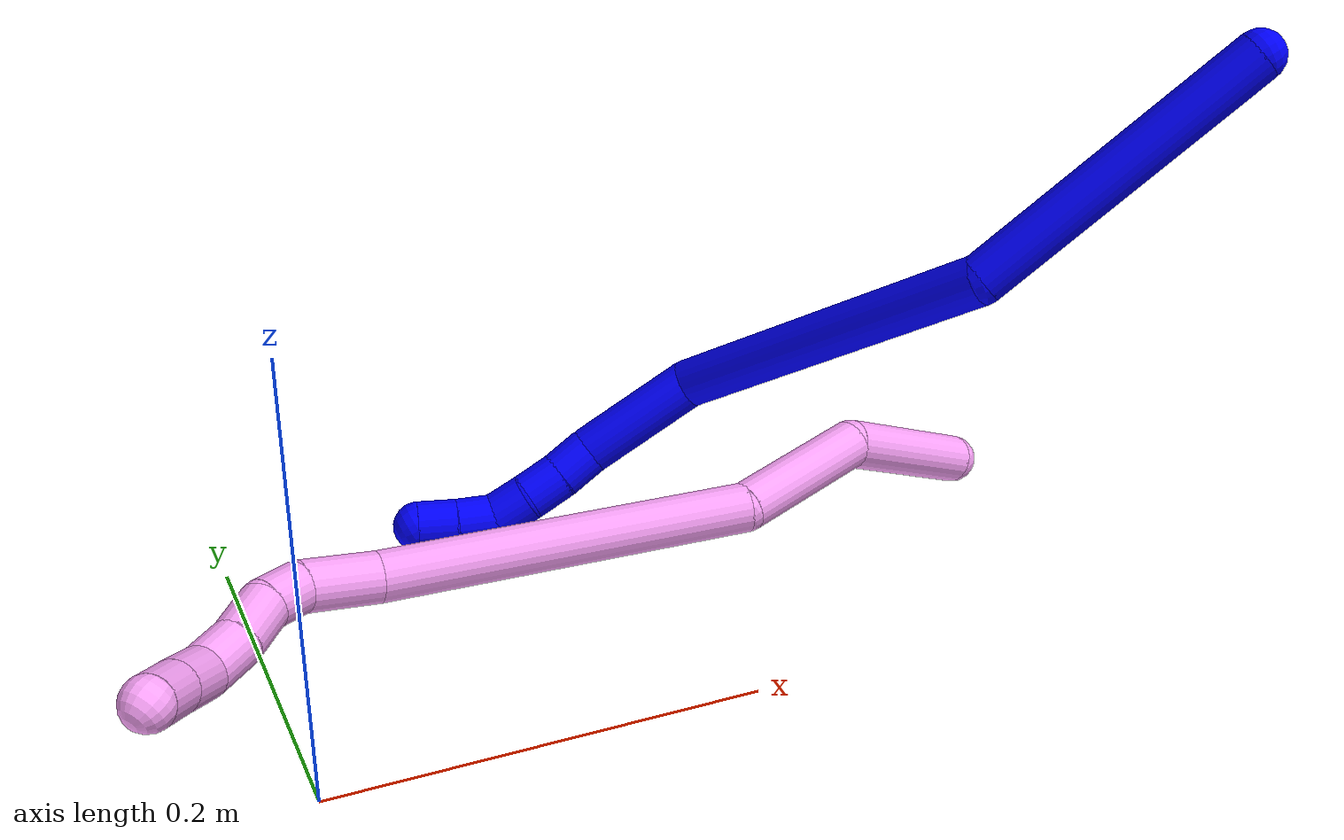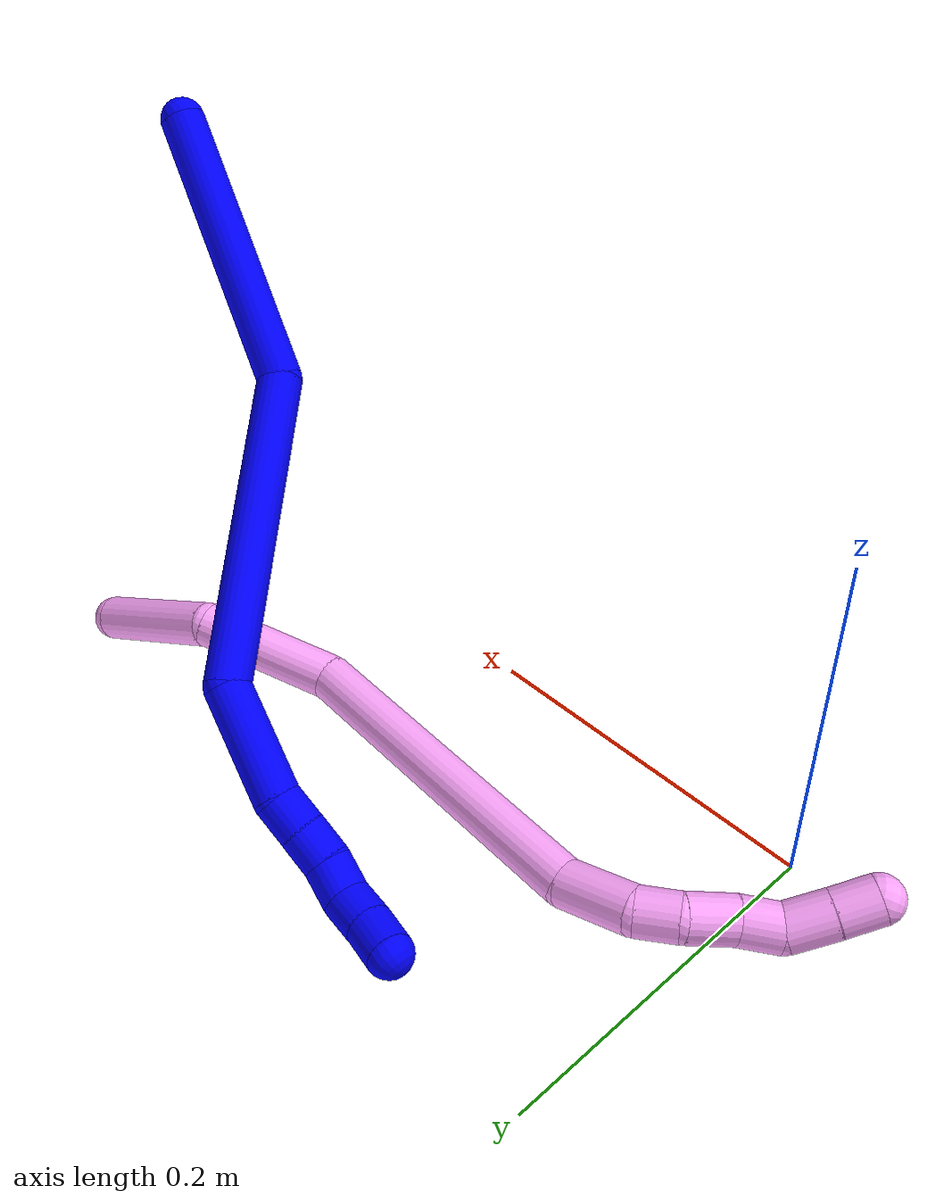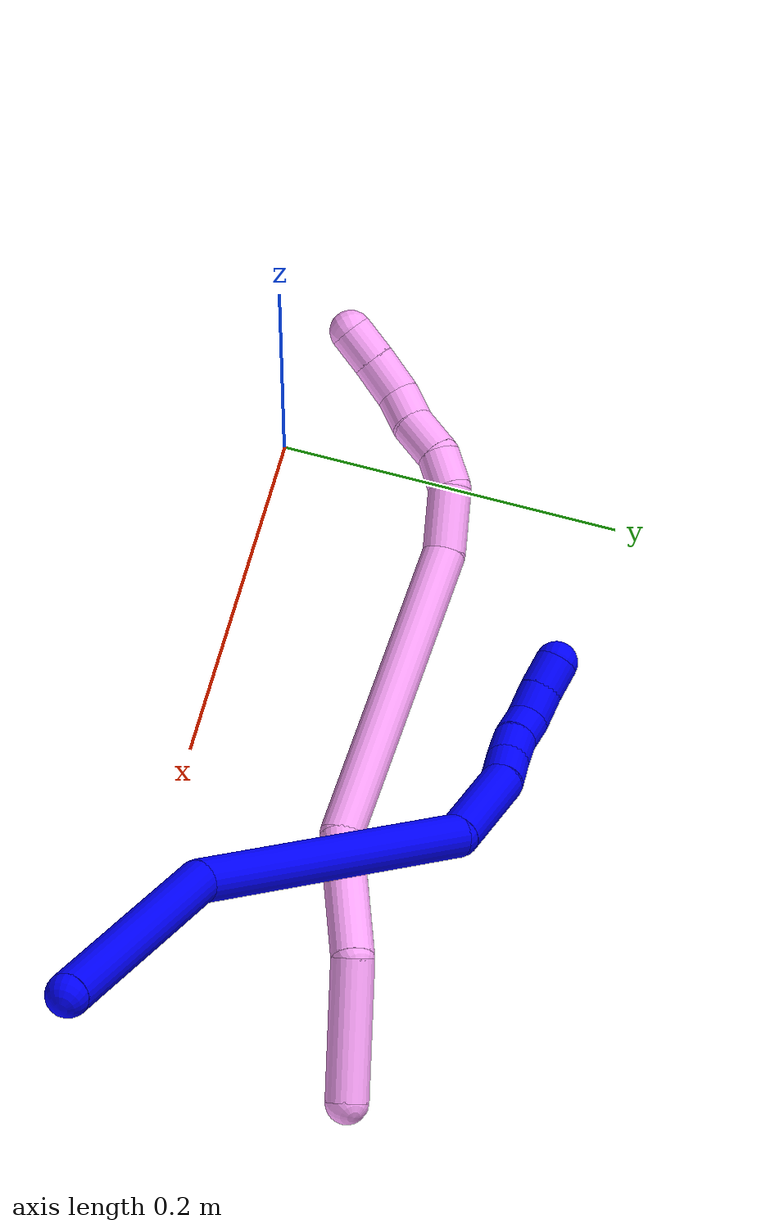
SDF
<sdf version="1.7">
 <world name="default">
  <model name="photoneo_s_sensor">
   <static>1</static>
   <pose>0 0 2 1.57079 1.57079 3.14159</pose>
   <link name="link">
    <inertial><mass>0.1</mass></inertial>
    <sensor name="sensor" type="depth">
     <update_rate>30</update_rate>
     <camera>
      <horizontal_fov>1.22</horizontal_fov>
      <image><width>1920</width><height>1200</height><format>B8G8R8</format></image>
      <clip><near>0.1</near><far>4</far></clip>
      <depth_camera><output>points</output></depth_camera>
     </camera>
     <plugin name="camera_plugin" filename="libgazebo_ros_depth_camera.so">
      <baseline>0.2</baseline>
      <alwaysOn>1</alwaysOn>
      <updateRate>0.0</updateRate>
      <cameraName>camera_ir</cameraName>
      <imageTopicName>/camera/color/image_raw</imageTopicName>
      <cameraInfoTopicName>/camera/color/camera_info</cameraInfoTopicName>
      <depthImageTopicName>/camera/depth/image_raw</depthImageTopicName>
      <depthImageCameraInfoTopicName>/camera/depth/camera_info</depthImageCameraInfoTopicName>
      <pointCloudTopicName>/camera/depth/points</pointCloudTopicName>
      <frameName>fr_optical</frameName>
      <pointCloudCutoff>0.1</pointCloudCutoff>
      <pointCloudCutoffMax>2.0</pointCloudCutoffMax>
      <distortionK1>0</distortionK1>
      <distortionK2>0</distortionK2>
      <distortionK3>0</distortionK3>
      <distortionT1>0</distortionT1>
      <distortionT2>0</distortionT2>
      <CxPrime>0</CxPrime>
      <Cx>0</Cx>
      <Cy>0</Cy>
      <focalLength>0</focalLength>
      <hackBaseline>0</hackBaseline>
     </plugin>
    </sensor>
   </link>
  </model>
  <model name="bin">
   <static>1</static>
   <link name="bottom">
    <collision name="collision-bottom">
     <pose>0 0 -0.01 0 -0 0</pose>
     <geometry><box><size>0.8 0.6 0.02</size></box></geometry>
     <surface>
      <friction><ode><mu>100</mu><mu2>100</mu2></ode></friction>
      <contact><collide_bitmask>65535</collide_bitmask></contact>
     </surface>
    </collision>
   </link>
   <link name="west_wall">
    <collision name="collision-west_wall">
     <pose>-0.41 0 0.1 0 -0 0</pose>
     <geometry><box><size>0.02 0.6 0.2</size></box></geometry>
     <surface>
      <friction><ode><mu>100</mu><mu2>100</mu2></ode></friction>
      <contact><collide_bitmask>65535</collide_bitmask></contact>
     </surface>
    </collision>
   </link>
   <link name="east_wall">
    <collision name="collision-east_wall">
     <pose>0.41 0 0.1 0 -0 0</pose>
     <geometry><box><size>0.02 0.6 0.2</size></box></geometry>
     <surface>
      <friction><ode><mu>100</mu><mu2>100</mu2></ode></friction>
      <contact><collide_bitmask>65535</collide_bitmask></contact>
     </surface>
    </collision>
   </link>
   <link name="south_wall">
    <collision name="collision-south_wall">
     <pose>0 -0.31 0.1 0 -0 0</pose>
     <geometry><box><size>0.8 0.02 0.2</size></box></geometry>
     <surface>
      <friction><ode><mu>100</mu><mu2>100</mu2></ode></friction>
      <contact><collide_bitmask>65535</collide_bitmask></contact>
     </surface>
    </collision>
   </link>
   <link name="north_wall">
    <collision name="collision-north_wall">
     <pose>0 0.31 0.1 0 -0 0</pose>
     <geometry><box><size>0.8 0.02 0.2</size></box></geometry>
     <surface>
      <friction><ode><mu>100</mu><mu2>100</mu2></ode></friction>
      <contact><collide_bitmask>65535</collide_bitmask></contact>
     </surface>
    </collision>
   </link>
  </model>
  <model name="1">
   <static>0</static>
   <link name="1">
    <collision name="collision-cylinder-e_1_1_4">
     <pose>0.025302 0.006108 -0.075731 -3.06112 0.321469 -2.65481</pose>
     <geometry><cylinder><radius>0.0125</radius><length>0.160159</length></cylinder></geometry>
     <surface>
      <friction><ode><mu>1.16</mu><mu2>1.16</mu2><slip1>0</slip1><slip2>0</slip2></ode></friction>
      <contact><ode><kp>1e+06</kp><kd>1</kd><max_vel>0</max_vel><min_depth>0.001</min_depth></ode></contact>
     </surface>
    </collision>
    <visual name="visual-cylinder-e_1_1_4">
     <pose>0.025302 0.006108 -0.075731 -3.06112 0.321469 -2.65481</pose>
     <geometry><cylinder><radius>0.0125</radius><length>0.160159</length></cylinder></geometry>
     <material><ambient>0 0 1 1</ambient></material>
    </visual>
    <collision name="collision-cylinder-e_2_4_5">
     <pose>0.084807 0.061228 -0.216688 -2.49717 0.396961 -1.08445</pose>
     <geometry><cylinder><radius>0.0125</radius><length>0.176934</length></cylinder></geometry>
     <surface>
      <friction><ode><mu>1.16</mu><mu2>1.16</mu2><slip1>0</slip1><slip2>0</slip2></ode></friction>
      <contact><ode><kp>1e+06</kp><kd>1</kd><max_vel>0</max_vel><min_depth>0.001</min_depth></ode></contact>
     </surface>
    </collision>
    <visual name="visual-cylinder-e_2_4_5">
     <pose>0.084807 0.061228 -0.216688 -2.49717 0.396961 -1.08445</pose>
     <geometry><cylinder><radius>0.0125</radius><length>0.176934</length></cylinder></geometry>
     <material><ambient>0 0 1 1</ambient></material>
    </visual>
    <collision name="collision-cylinder-e_3_5_6">
     <pose>0.125028 0.112823 -0.312567 -3.05756 0.193206 -2.32291</pose>
     <geometry><cylinder><radius>0.0125</radius><length>0.062692</length></cylinder></geometry>
     <surface>
      <friction><ode><mu>1.16</mu><mu2>1.16</mu2><slip1>0</slip1><slip2>0</slip2></ode></friction>
      <contact><ode><kp>1e+06</kp><kd>1</kd><max_vel>0</max_vel><min_depth>0.001</min_depth></ode></contact>
     </surface>
    </collision>
    <visual name="visual-cylinder-e_3_5_6">
     <pose>0.125028 0.112823 -0.312567 -3.05756 0.193206 -2.32291</pose>
     <geometry><cylinder><radius>0.0125</radius><length>0.062692</length></cylinder></geometry>
     <material><ambient>0 0 1 1</ambient></material>
    </visual>
    <collision name="collision-cylinder-e_4_6_7">
     <pose>0.131887 0.11392 -0.353153 2.99316 0.08344 1.02314</pose>
     <geometry><cylinder><radius>0.0125</radius><length>0.020154</length></cylinder></geometry>
     <surface>
      <friction><ode><mu>1.16</mu><mu2>1.16</mu2><slip1>0</slip1><slip2>0</slip2></ode></friction>
      <contact><ode><kp>1e+06</kp><kd>1</kd><max_vel>0</max_vel><min_depth>0.001</min_depth></ode></contact>
     </surface>
    </collision>
    <visual name="visual-cylinder-e_4_6_7">
     <pose>0.131887 0.11392 -0.353153 2.99316 0.08344 1.02314</pose>
     <geometry><cylinder><radius>0.0125</radius><length>0.020154</length></cylinder></geometry>
     <material><ambient>0 0 1 1</ambient></material>
    </visual>
    <collision name="collision-cylinder-e_5_7_8">
     <pose>0.132875 0.111631 -0.373066 3.0612 0.014781 0.363483</pose>
     <geometry><cylinder><radius>0.0125</radius><length>0.020031</length></cylinder></geometry>
     <surface>
      <friction><ode><mu>1.16</mu><mu2>1.16</mu2><slip1>0</slip1><slip2>0</slip2></ode></friction>
      <contact><ode><kp>1e+06</kp><kd>1</kd><max_vel>0</max_vel><min_depth>0.001</min_depth></ode></contact>
     </surface>
    </collision>
    <visual name="visual-cylinder-e_5_7_8">
     <pose>0.132875 0.111631 -0.373066 3.0612 0.014781 0.363483</pose>
     <geometry><cylinder><radius>0.0125</radius><length>0.020031</length></cylinder></geometry>
     <material><ambient>0 0 1 1</ambient></material>
    </visual>
    <collision name="collision-cylinder-e_6_8_9">
     <pose>0.134187 0.111385 -0.392973 -3.08535 0.116661 -2.24383</pose>
     <geometry><cylinder><radius>0.0125</radius><length>0.020016</length></cylinder></geometry>
     <surface>
      <friction><ode><mu>1.16</mu><mu2>1.16</mu2><slip1>0</slip1><slip2>0</slip2></ode></friction>
      <contact><ode><kp>1e+06</kp><kd>1</kd><max_vel>0</max_vel><min_depth>0.001</min_depth></ode></contact>
     </surface>
    </collision>
    <visual name="visual-cylinder-e_6_8_9">
     <pose>0.134187 0.111385 -0.392973 -3.08535 0.116661 -2.24383</pose>
     <geometry><cylinder><radius>0.0125</radius><length>0.020016</length></cylinder></geometry>
     <material><ambient>0 0 1 1</ambient></material>
    </visual>
    <collision name="collision-cylinder-e_7_9_10">
     <pose>0.131693 0.113859 -0.412008 -2.93445 -0.374513 2.13808</pose>
     <geometry><cylinder><radius>0.0125</radius><length>0.020008</length></cylinder></geometry>
     <surface>
      <friction><ode><mu>1.16</mu><mu2>1.16</mu2><slip1>0</slip1><slip2>0</slip2></ode></friction>
      <contact><ode><kp>1e+06</kp><kd>1</kd><max_vel>0</max_vel><min_depth>0.001</min_depth></ode></contact>
     </surface>
    </collision>
    <visual name="visual-cylinder-e_7_9_10">
     <pose>0.131693 0.113859 -0.412008 -2.93445 -0.374513 2.13808</pose>
     <geometry><cylinder><radius>0.0125</radius><length>0.020008</length></cylinder></geometry>
     <material><ambient>0 0 1 1</ambient></material>
    </visual>
    <collision name="collision-cylinder-e_8_10_2">
     <pose>0.124373 0.118499 -0.430021 -2.84447 -0.374649 1.80486</pose>
     <geometry><cylinder><radius>0.0125</radius><length>0.020006</length></cylinder></geometry>
     <surface>
      <friction><ode><mu>1.16</mu><mu2>1.16</mu2><slip1>0</slip1><slip2>0</slip2></ode></friction>
      <contact><ode><kp>1e+06</kp><kd>1</kd><max_vel>0</max_vel><min_depth>0.001</min_depth></ode></contact>
     </surface>
    </collision>
    <visual name="visual-cylinder-e_8_10_2">
     <pose>0.124373 0.118499 -0.430021 -2.84447 -0.374649 1.80486</pose>
     <geometry><cylinder><radius>0.0125</radius><length>0.020006</length></cylinder></geometry>
     <material><ambient>0 0 1 1</ambient></material>
    </visual>
    <collision name="collision-sphere-2">
     <pose>0.120712 0.121225 -0.438923 0 -0 0</pose>
     <geometry><sphere><radius>0.0125</radius></sphere></geometry>
     <surface>
      <friction><ode><mu>1.16</mu><mu2>1.16</mu2><slip1>0</slip1><slip2>0</slip2></ode></friction>
      <contact><ode><kp>1e+06</kp><kd>1</kd><max_vel>0</max_vel><min_depth>0.001</min_depth></ode></contact>
     </surface>
    </collision>
    <visual name="visual-sphere-2">
     <pose>0.120712 0.121225 -0.438923 0 -0 0</pose>
     <geometry><sphere><radius>0.0125</radius></sphere></geometry>
     <material><ambient>0 0 1 1</ambient></material>
    </visual>
    <collision name="collision-sphere-10">
     <pose>0.128033 0.115774 -0.42112 0 -0 0</pose>
     <geometry><sphere><radius>0.0125</radius></sphere></geometry>
     <surface>
      <friction><ode><mu>1.16</mu><mu2>1.16</mu2><slip1>0</slip1><slip2>0</slip2></ode></friction>
      <contact><ode><kp>1e+06</kp><kd>1</kd><max_vel>0</max_vel><min_depth>0.001</min_depth></ode></contact>
     </surface>
    </collision>
    <visual name="visual-sphere-10">
     <pose>0.128033 0.115774 -0.42112 0 -0 0</pose>
     <geometry><sphere><radius>0.0125</radius></sphere></geometry>
     <material><ambient>0 0 1 1</ambient></material>
    </visual>
    <collision name="collision-sphere-9">
     <pose>0.135352 0.111944 -0.402897 0 -0 0</pose>
     <geometry><sphere><radius>0.0125</radius></sphere></geometry>
     <surface>
      <friction><ode><mu>1.16</mu><mu2>1.16</mu2><slip1>0</slip1><slip2>0</slip2></ode></friction>
      <contact><ode><kp>1e+06</kp><kd>1</kd><max_vel>0</max_vel><min_depth>0.001</min_depth></ode></contact>
     </surface>
    </collision>
    <visual name="visual-sphere-9">
     <pose>0.135352 0.111944 -0.402897 0 -0 0</pose>
     <geometry><sphere><radius>0.0125</radius></sphere></geometry>
     <material><ambient>0 0 1 1</ambient></material>
    </visual>
    <collision name="collision-sphere-4">
     <pose>0.050604 0.012216 -0.151463 0 -0 0</pose>
     <geometry><sphere><radius>0.0125</radius></sphere></geometry>
     <surface>
      <friction><ode><mu>1.16</mu><mu2>1.16</mu2><slip1>0</slip1><slip2>0</slip2></ode></friction>
      <contact><ode><kp>1e+06</kp><kd>1</kd><max_vel>0</max_vel><min_depth>0.001</min_depth></ode></contact>
     </surface>
    </collision>
    <visual name="visual-sphere-4">
     <pose>0.050604 0.012216 -0.151463 0 -0 0</pose>
     <geometry><sphere><radius>0.0125</radius></sphere></geometry>
     <material><ambient>0 0 1 1</ambient></material>
    </visual>
    <collision name="collision-sphere-1">
     <geometry><sphere><radius>0.0125</radius></sphere></geometry>
     <surface>
      <friction><ode><mu>1.16</mu><mu2>1.16</mu2><slip1>0</slip1><slip2>0</slip2></ode></friction>
      <contact><ode><kp>1e+06</kp><kd>1</kd><max_vel>0</max_vel><min_depth>0.001</min_depth></ode></contact>
     </surface>
    </collision>
    <visual name="visual-sphere-1">
     <geometry><sphere><radius>0.0125</radius></sphere></geometry>
     <material><ambient>0 0 1 1</ambient></material>
    </visual>
    <collision name="collision-sphere-8">
     <pose>0.133023 0.110827 -0.383049 0 -0 0</pose>
     <geometry><sphere><radius>0.0125</radius></sphere></geometry>
     <surface>
      <friction><ode><mu>1.16</mu><mu2>1.16</mu2><slip1>0</slip1><slip2>0</slip2></ode></friction>
      <contact><ode><kp>1e+06</kp><kd>1</kd><max_vel>0</max_vel><min_depth>0.001</min_depth></ode></contact>
     </surface>
    </collision>
    <visual name="visual-sphere-8">
     <pose>0.133023 0.110827 -0.383049 0 -0 0</pose>
     <geometry><sphere><radius>0.0125</radius></sphere></geometry>
     <material><ambient>0 0 1 1</ambient></material>
    </visual>
    <collision name="collision-sphere-5">
     <pose>0.11901 0.110241 -0.281913 0 -0 0</pose>
     <geometry><sphere><radius>0.0125</radius></sphere></geometry>
     <surface>
      <friction><ode><mu>1.16</mu><mu2>1.16</mu2><slip1>0</slip1><slip2>0</slip2></ode></friction>
      <contact><ode><kp>1e+06</kp><kd>1</kd><max_vel>0</max_vel><min_depth>0.001</min_depth></ode></contact>
     </surface>
    </collision>
    <visual name="visual-sphere-5">
     <pose>0.11901 0.110241 -0.281913 0 -0 0</pose>
     <geometry><sphere><radius>0.0125</radius></sphere></geometry>
     <material><ambient>0 0 1 1</ambient></material>
    </visual>
    <collision name="collision-sphere-6">
     <pose>0.131047 0.115405 -0.343221 0 -0 0</pose>
     <geometry><sphere><radius>0.0125</radius></sphere></geometry>
     <surface>
      <friction><ode><mu>1.16</mu><mu2>1.16</mu2><slip1>0</slip1><slip2>0</slip2></ode></friction>
      <contact><ode><kp>1e+06</kp><kd>1</kd><max_vel>0</max_vel><min_depth>0.001</min_depth></ode></contact>
     </surface>
    </collision>
    <visual name="visual-sphere-6">
     <pose>0.131047 0.115405 -0.343221 0 -0 0</pose>
     <geometry><sphere><radius>0.0125</radius></sphere></geometry>
     <material><ambient>0 0 1 1</ambient></material>
    </visual>
    <collision name="collision-sphere-7">
     <pose>0.132726 0.112435 -0.363084 0 -0 0</pose>
     <geometry><sphere><radius>0.0125</radius></sphere></geometry>
     <surface>
      <friction><ode><mu>1.16</mu><mu2>1.16</mu2><slip1>0</slip1><slip2>0</slip2></ode></friction>
      <contact><ode><kp>1e+06</kp><kd>1</kd><max_vel>0</max_vel><min_depth>0.001</min_depth></ode></contact>
     </surface>
    </collision>
    <visual name="visual-sphere-7">
     <pose>0.132726 0.112435 -0.363084 0 -0 0</pose>
     <geometry><sphere><radius>0.0125</radius></sphere></geometry>
     <material><ambient>0 0 1 1</ambient></material>
    </visual>
    <inertial>
     <pose>0.080049 0.06059 -0.218733 0 -0 0</pose>
     <mass>0.5</mass>
     <inertia>
      <ixx>-0.000646</ixx>
      <ixy>0</ixy>
      <ixz>0</ixz>
      <iyy>-0.000292</iyy>
      <iyz>0</iyz>
      <izz>-0.000618</izz>
     </inertia>
    </inertial>
   </link>
   <pose>0.454673 0.013934 0.262805 0.602417 1.05429 0.603729</pose>
  </model>
  <model name="4">
   <static>0</static>
   <link name="4">
    <collision name="collision-cylinder-e_1_1_4">
     <pose>-0.027607 -0.014427 -0.026192 2.63813 -0.745514 -1.97805</pose>
     <geometry><cylinder><radius>0.0125</radius><length>0.081395</length></cylinder></geometry>
     <surface>
      <friction><ode><mu>1.16</mu><mu2>1.16</mu2><slip1>0</slip1><slip2>0</slip2></ode></friction>
      <contact><ode><kp>1e+06</kp><kd>1</kd><max_vel>0</max_vel><min_depth>0.001</min_depth></ode></contact>
     </surface>
    </collision>
    <visual name="visual-cylinder-e_1_1_4">
     <pose>-0.027607 -0.014427 -0.026192 2.63813 -0.745514 -1.97805</pose>
     <geometry><cylinder><radius>0.0125</radius><length>0.081395</length></cylinder></geometry>
     <material><ambient>1 0.65098 0.996078 1</ambient></material>
    </visual>
    <collision name="collision-cylinder-e_2_4_5">
     <pose>-0.069598 -0.031298 -0.088831 3.07461 -0.37512 -2.79211</pose>
     <geometry><cylinder><radius>0.0125</radius><length>0.078518</length></cylinder></geometry>
     <surface>
      <friction><ode><mu>1.16</mu><mu2>1.16</mu2><slip1>0</slip1><slip2>0</slip2></ode></friction>
      <contact><ode><kp>1e+06</kp><kd>1</kd><max_vel>0</max_vel><min_depth>0.001</min_depth></ode></contact>
     </surface>
    </collision>
    <visual name="visual-cylinder-e_2_4_5">
     <pose>-0.069598 -0.031298 -0.088831 3.07461 -0.37512 -2.79211</pose>
     <geometry><cylinder><radius>0.0125</radius><length>0.078518</length></cylinder></geometry>
     <material><ambient>1 0.65098 0.996078 1</ambient></material>
    </visual>
    <collision name="collision-cylinder-e_3_5_6">
     <pose>-0.146716 -0.022503 -0.192156 -2.97507 -0.746487 2.72166</pose>
     <geometry><cylinder><radius>0.0125</radius><length>0.184765</length></cylinder></geometry>
     <surface>
      <friction><ode><mu>1.16</mu><mu2>1.16</mu2><slip1>0</slip1><slip2>0</slip2></ode></friction>
      <contact><ode><kp>1e+06</kp><kd>1</kd><max_vel>0</max_vel><min_depth>0.001</min_depth></ode></contact>
     </surface>
    </collision>
    <visual name="visual-cylinder-e_3_5_6">
     <pose>-0.146716 -0.022503 -0.192156 -2.97507 -0.746487 2.72166</pose>
     <geometry><cylinder><radius>0.0125</radius><length>0.184765</length></cylinder></geometry>
     <material><ambient>1 0.65098 0.996078 1</ambient></material>
    </visual>
    <collision name="collision-cylinder-e_4_6_7">
     <pose>-0.221814 -0.014716 -0.273547 2.90797 -0.692034 -2.51224</pose>
     <geometry><cylinder><radius>0.0125</radius><length>0.038753</length></cylinder></geometry>
     <surface>
      <friction><ode><mu>1.16</mu><mu2>1.16</mu2><slip1>0</slip1><slip2>0</slip2></ode></friction>
      <contact><ode><kp>1e+06</kp><kd>1</kd><max_vel>0</max_vel><min_depth>0.001</min_depth></ode></contact>
     </surface>
    </collision>
    <visual name="visual-cylinder-e_4_6_7">
     <pose>-0.221814 -0.014716 -0.273547 2.90797 -0.692034 -2.51224</pose>
     <geometry><cylinder><radius>0.0125</radius><length>0.038753</length></cylinder></geometry>
     <material><ambient>1 0.65098 0.996078 1</ambient></material>
    </visual>
    <collision name="collision-cylinder-e_5_7_8">
     <pose>-0.23731 -0.021752 -0.29787 2.79143 -0.291424 -1.38508</pose>
     <geometry><cylinder><radius>0.0125</radius><length>0.021806</length></cylinder></geometry>
     <surface>
      <friction><ode><mu>1.16</mu><mu2>1.16</mu2><slip1>0</slip1><slip2>0</slip2></ode></friction>
      <contact><ode><kp>1e+06</kp><kd>1</kd><max_vel>0</max_vel><min_depth>0.001</min_depth></ode></contact>
     </surface>
    </collision>
    <visual name="visual-cylinder-e_5_7_8">
     <pose>-0.23731 -0.021752 -0.29787 2.79143 -0.291424 -1.38508</pose>
     <geometry><cylinder><radius>0.0125</radius><length>0.021806</length></cylinder></geometry>
     <material><ambient>1 0.65098 0.996078 1</ambient></material>
    </visual>
    <collision name="collision-cylinder-e_6_8_9">
     <pose>-0.23947 -0.029472 -0.320086 2.81973 0.074247 0.449835</pose>
     <geometry><cylinder><radius>0.0125</radius><length>0.026227</length></cylinder></geometry>
     <surface>
      <friction><ode><mu>1.16</mu><mu2>1.16</mu2><slip1>0</slip1><slip2>0</slip2></ode></friction>
      <contact><ode><kp>1e+06</kp><kd>1</kd><max_vel>0</max_vel><min_depth>0.001</min_depth></ode></contact>
     </surface>
    </collision>
    <visual name="visual-cylinder-e_6_8_9">
     <pose>-0.23947 -0.029472 -0.320086 2.81973 0.074247 0.449835</pose>
     <geometry><cylinder><radius>0.0125</radius><length>0.026227</length></cylinder></geometry>
     <material><ambient>1 0.65098 0.996078 1</ambient></material>
    </visual>
    <collision name="collision-cylinder-e_7_9_10">
     <pose>-0.239755 -0.036229 -0.343083 2.89909 -0.114717 -0.880764</pose>
     <geometry><cylinder><radius>0.0125</radius><length>0.021966</length></cylinder></geometry>
     <surface>
      <friction><ode><mu>1.16</mu><mu2>1.16</mu2><slip1>0</slip1><slip2>0</slip2></ode></friction>
      <contact><ode><kp>1e+06</kp><kd>1</kd><max_vel>0</max_vel><min_depth>0.001</min_depth></ode></contact>
     </surface>
    </collision>
    <visual name="visual-cylinder-e_7_9_10">
     <pose>-0.239755 -0.036229 -0.343083 2.89909 -0.114717 -0.880764</pose>
     <geometry><cylinder><radius>0.0125</radius><length>0.021966</length></cylinder></geometry>
     <material><ambient>1 0.65098 0.996078 1</ambient></material>
    </visual>
    <collision name="collision-cylinder-e_8_10_11">
     <pose>-0.242512 -0.047199 -0.362835 2.40245 -0.120394 -0.3087</pose>
     <geometry><cylinder><radius>0.0125</radius><length>0.024972</length></cylinder></geometry>
     <surface>
      <friction><ode><mu>1.16</mu><mu2>1.16</mu2><slip1>0</slip1><slip2>0</slip2></ode></friction>
      <contact><ode><kp>1e+06</kp><kd>1</kd><max_vel>0</max_vel><min_depth>0.001</min_depth></ode></contact>
     </surface>
    </collision>
    <visual name="visual-cylinder-e_8_10_11">
     <pose>-0.242512 -0.047199 -0.362835 2.40245 -0.120394 -0.3087</pose>
     <geometry><cylinder><radius>0.0125</radius><length>0.024972</length></cylinder></geometry>
     <material><ambient>1 0.65098 0.996078 1</ambient></material>
    </visual>
    <collision name="collision-cylinder-e_9_11_2">
     <pose>-0.244924 -0.062926 -0.379831 2.38628 -0.084648 -0.212704</pose>
     <geometry><cylinder><radius>0.0125</radius><length>0.021598</length></cylinder></geometry>
     <surface>
      <friction><ode><mu>1.16</mu><mu2>1.16</mu2><slip1>0</slip1><slip2>0</slip2></ode></friction>
      <contact><ode><kp>1e+06</kp><kd>1</kd><max_vel>0</max_vel><min_depth>0.001</min_depth></ode></contact>
     </surface>
    </collision>
    <visual name="visual-cylinder-e_9_11_2">
     <pose>-0.244924 -0.062926 -0.379831 2.38628 -0.084648 -0.212704</pose>
     <geometry><cylinder><radius>0.0125</radius><length>0.021598</length></cylinder></geometry>
     <material><ambient>1 0.65098 0.996078 1</ambient></material>
    </visual>
    <collision name="collision-sphere-2">
     <pose>-0.245837 -0.070303 -0.387665 0 -0 0</pose>
     <geometry><sphere><radius>0.0125</radius></sphere></geometry>
     <surface>
      <friction><ode><mu>1.16</mu><mu2>1.16</mu2><slip1>0</slip1><slip2>0</slip2></ode></friction>
      <contact><ode><kp>1e+06</kp><kd>1</kd><max_vel>0</max_vel><min_depth>0.001</min_depth></ode></contact>
     </surface>
    </collision>
    <visual name="visual-sphere-2">
     <pose>-0.245837 -0.070303 -0.387665 0 -0 0</pose>
     <geometry><sphere><radius>0.0125</radius></sphere></geometry>
     <material><ambient>1 0.65098 0.996078 1</ambient></material>
    </visual>
    <collision name="collision-sphere-11">
     <pose>-0.244011 -0.05555 -0.371996 0 -0 0</pose>
     <geometry><sphere><radius>0.0125</radius></sphere></geometry>
     <surface>
      <friction><ode><mu>1.16</mu><mu2>1.16</mu2><slip1>0</slip1><slip2>0</slip2></ode></friction>
      <contact><ode><kp>1e+06</kp><kd>1</kd><max_vel>0</max_vel><min_depth>0.001</min_depth></ode></contact>
     </surface>
    </collision>
    <visual name="visual-sphere-11">
     <pose>-0.244011 -0.05555 -0.371996 0 -0 0</pose>
     <geometry><sphere><radius>0.0125</radius></sphere></geometry>
     <material><ambient>1 0.65098 0.996078 1</ambient></material>
    </visual>
    <collision name="collision-sphere-10">
     <pose>-0.241012 -0.038849 -0.353674 0 -0 0</pose>
     <geometry><sphere><radius>0.0125</radius></sphere></geometry>
     <surface>
      <friction><ode><mu>1.16</mu><mu2>1.16</mu2><slip1>0</slip1><slip2>0</slip2></ode></friction>
      <contact><ode><kp>1e+06</kp><kd>1</kd><max_vel>0</max_vel><min_depth>0.001</min_depth></ode></contact>
     </surface>
    </collision>
    <visual name="visual-sphere-10">
     <pose>-0.241012 -0.038849 -0.353674 0 -0 0</pose>
     <geometry><sphere><radius>0.0125</radius></sphere></geometry>
     <material><ambient>1 0.65098 0.996078 1</ambient></material>
    </visual>
    <collision name="collision-sphere-9">
     <pose>-0.238498 -0.033609 -0.332491 0 -0 0</pose>
     <geometry><sphere><radius>0.0125</radius></sphere></geometry>
     <surface>
      <friction><ode><mu>1.16</mu><mu2>1.16</mu2><slip1>0</slip1><slip2>0</slip2></ode></friction>
      <contact><ode><kp>1e+06</kp><kd>1</kd><max_vel>0</max_vel><min_depth>0.001</min_depth></ode></contact>
     </surface>
    </collision>
    <visual name="visual-sphere-9">
     <pose>-0.238498 -0.033609 -0.332491 0 -0 0</pose>
     <geometry><sphere><radius>0.0125</radius></sphere></geometry>
     <material><ambient>1 0.65098 0.996078 1</ambient></material>
    </visual>
    <collision name="collision-sphere-4">
     <pose>-0.055214 -0.028853 -0.052384 0 -0 0</pose>
     <geometry><sphere><radius>0.0125</radius></sphere></geometry>
     <surface>
      <friction><ode><mu>1.16</mu><mu2>1.16</mu2><slip1>0</slip1><slip2>0</slip2></ode></friction>
      <contact><ode><kp>1e+06</kp><kd>1</kd><max_vel>0</max_vel><min_depth>0.001</min_depth></ode></contact>
     </surface>
    </collision>
    <visual name="visual-sphere-4">
     <pose>-0.055214 -0.028853 -0.052384 0 -0 0</pose>
     <geometry><sphere><radius>0.0125</radius></sphere></geometry>
     <material><ambient>1 0.65098 0.996078 1</ambient></material>
    </visual>
    <collision name="collision-sphere-1">
     <geometry><sphere><radius>0.0125</radius></sphere></geometry>
     <surface>
      <friction><ode><mu>1.16</mu><mu2>1.16</mu2><slip1>0</slip1><slip2>0</slip2></ode></friction>
      <contact><ode><kp>1e+06</kp><kd>1</kd><max_vel>0</max_vel><min_depth>0.001</min_depth></ode></contact>
     </surface>
    </collision>
    <visual name="visual-sphere-1">
     <geometry><sphere><radius>0.0125</radius></sphere></geometry>
     <material><ambient>1 0.65098 0.996078 1</ambient></material>
    </visual>
    <collision name="collision-sphere-8">
     <pose>-0.240443 -0.025335 -0.30768 0 -0 0</pose>
     <geometry><sphere><radius>0.0125</radius></sphere></geometry>
     <surface>
      <friction><ode><mu>1.16</mu><mu2>1.16</mu2><slip1>0</slip1><slip2>0</slip2></ode></friction>
      <contact><ode><kp>1e+06</kp><kd>1</kd><max_vel>0</max_vel><min_depth>0.001</min_depth></ode></contact>
     </surface>
    </collision>
    <visual name="visual-sphere-8">
     <pose>-0.240443 -0.025335 -0.30768 0 -0 0</pose>
     <geometry><sphere><radius>0.0125</radius></sphere></geometry>
     <material><ambient>1 0.65098 0.996078 1</ambient></material>
    </visual>
    <collision name="collision-sphere-5">
     <pose>-0.083982 -0.033743 -0.125278 0 -0 0</pose>
     <geometry><sphere><radius>0.0125</radius></sphere></geometry>
     <surface>
      <friction><ode><mu>1.16</mu><mu2>1.16</mu2><slip1>0</slip1><slip2>0</slip2></ode></friction>
      <contact><ode><kp>1e+06</kp><kd>1</kd><max_vel>0</max_vel><min_depth>0.001</min_depth></ode></contact>
     </surface>
    </collision>
    <visual name="visual-sphere-5">
     <pose>-0.083982 -0.033743 -0.125278 0 -0 0</pose>
     <geometry><sphere><radius>0.0125</radius></sphere></geometry>
     <material><ambient>1 0.65098 0.996078 1</ambient></material>
    </visual>
    <collision name="collision-sphere-6">
     <pose>-0.20945 -0.011262 -0.259034 0 -0 0</pose>
     <geometry><sphere><radius>0.0125</radius></sphere></geometry>
     <surface>
      <friction><ode><mu>1.16</mu><mu2>1.16</mu2><slip1>0</slip1><slip2>0</slip2></ode></friction>
      <contact><ode><kp>1e+06</kp><kd>1</kd><max_vel>0</max_vel><min_depth>0.001</min_depth></ode></contact>
     </surface>
    </collision>
    <visual name="visual-sphere-6">
     <pose>-0.20945 -0.011262 -0.259034 0 -0 0</pose>
     <geometry><sphere><radius>0.0125</radius></sphere></geometry>
     <material><ambient>1 0.65098 0.996078 1</ambient></material>
    </visual>
    <collision name="collision-sphere-7">
     <pose>-0.234178 -0.01817 -0.288061 0 -0 0</pose>
     <geometry><sphere><radius>0.0125</radius></sphere></geometry>
     <surface>
      <friction><ode><mu>1.16</mu><mu2>1.16</mu2><slip1>0</slip1><slip2>0</slip2></ode></friction>
      <contact><ode><kp>1e+06</kp><kd>1</kd><max_vel>0</max_vel><min_depth>0.001</min_depth></ode></contact>
     </surface>
    </collision>
    <visual name="visual-sphere-7">
     <pose>-0.234178 -0.01817 -0.288061 0 -0 0</pose>
     <geometry><sphere><radius>0.0125</radius></sphere></geometry>
     <material><ambient>1 0.65098 0.996078 1</ambient></material>
    </visual>
    <inertial>
     <pose>-0.142967 -0.025881 -0.189804 0 -0 0</pose>
     <mass>0.5</mass>
     <inertia>
      <ixx>-0.000317</ixx>
      <ixy>0</ixy>
      <ixz>0</ixz>
      <iyy>0.000678</iyy>
      <iyz>0</iyz>
      <izz>0.000346</izz>
     </inertia>
    </inertial>
   </link>
   <pose>0.387136 0.146244 0.012433 -1.11607 0.552061 -0.692319</pose>
  </model>
 </world>
</sdf>
